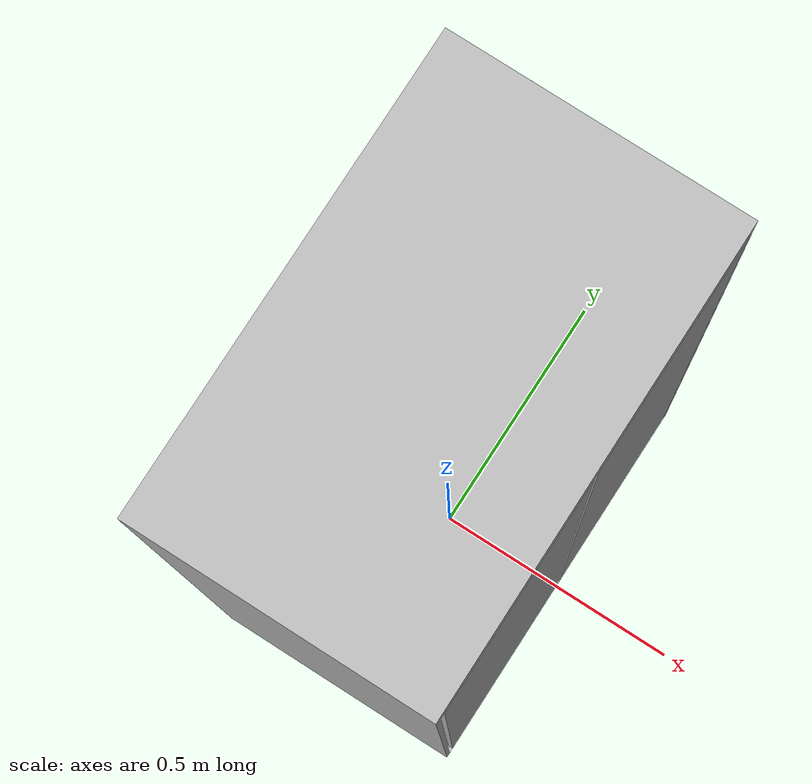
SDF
<?xml version='1.0' encoding='utf-8'?>
<sdf version="1.10">
    <model name="BigCabinet">
        <static>true</static>
        <link name="body">
            <pose>0 0 0 0 0 0</pose>
            <visual name="visual">
                <geometry>
                    <mesh>
                        <uri>model://BigCabinet/meshes/BigCabinet.obj</uri>
                    </mesh>
                </geometry>
            </visual>
            <collision name="collision">
                <geometry>
                    <mesh>
                        <uri>model://BigCabinet/meshes/BigCabinet.obj</uri>
                    </mesh>
                </geometry>
            </collision>
        </link>
    </model>
</sdf>
